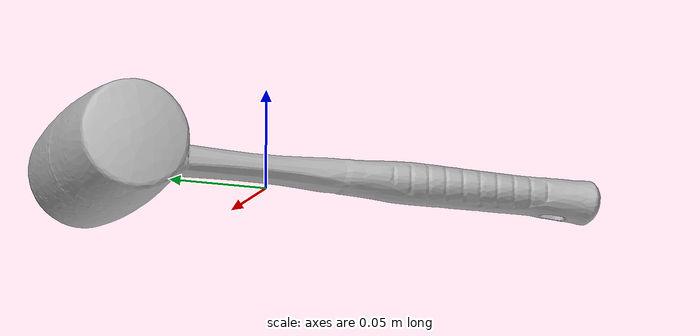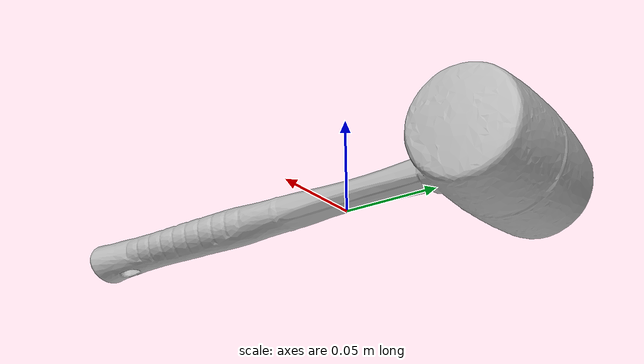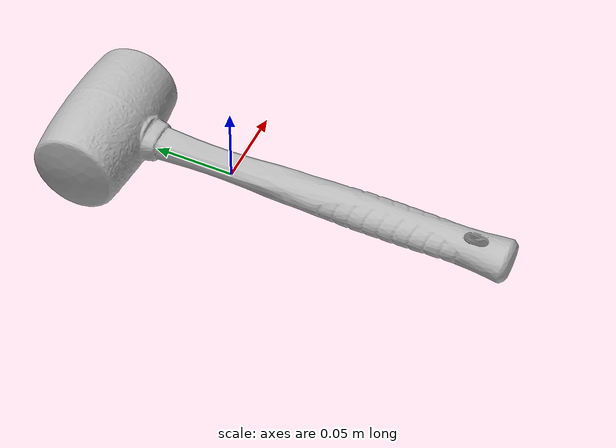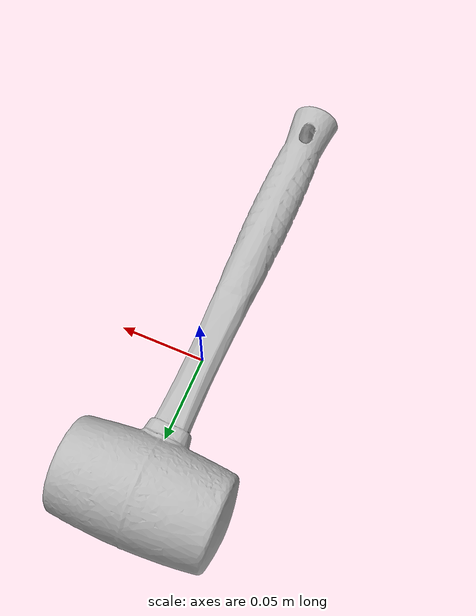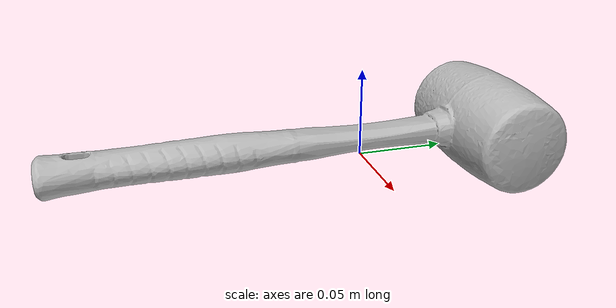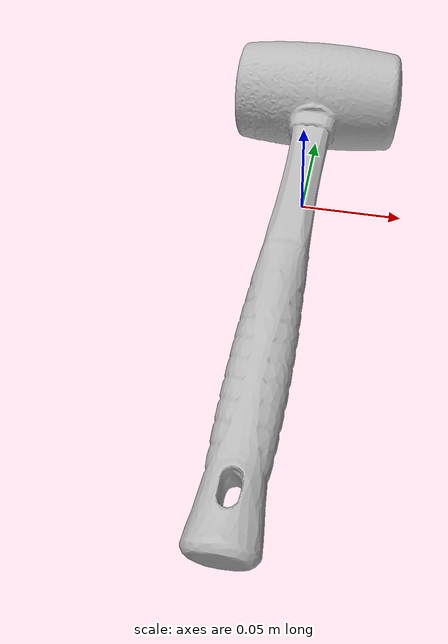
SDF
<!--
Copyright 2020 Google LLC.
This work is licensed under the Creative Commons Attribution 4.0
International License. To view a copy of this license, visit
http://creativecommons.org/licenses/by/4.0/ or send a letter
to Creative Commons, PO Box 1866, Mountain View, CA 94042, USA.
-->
<?xml version="1.0" ?>
<sdf version="1.6">
  <model name="Cole_Hardware_Hammer_Black">
    <link name="link_0">
      <visual name="visual">
        <geometry>
          <mesh>
            <uri>meshes/model.obj</uri>
          </mesh>
        </geometry>
      </visual>
      <collision name="collision_0">
        <geometry>
          <mesh>
            <uri>meshes/model.obj</uri>
          </mesh>
        </geometry>
      </collision>
    </link>
  </model>
</sdf>
